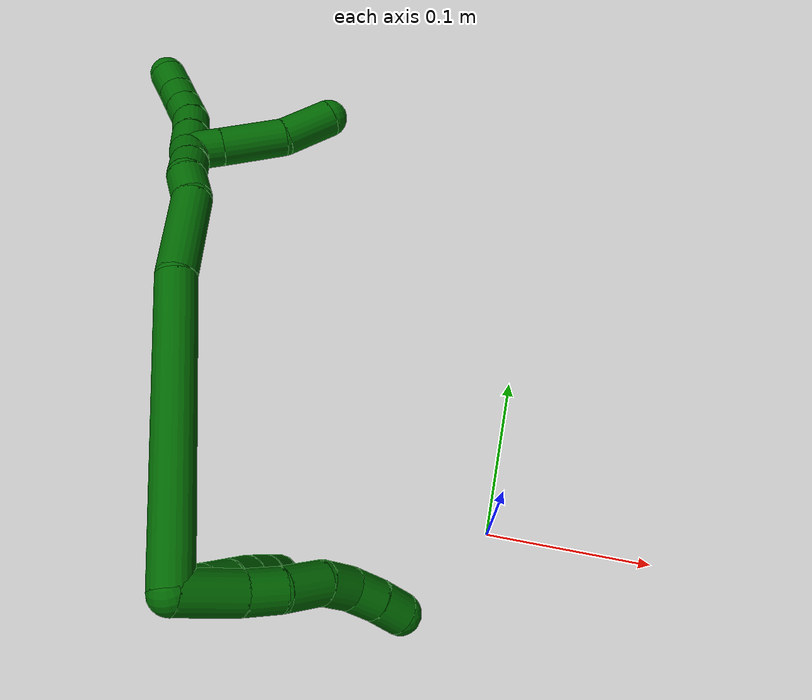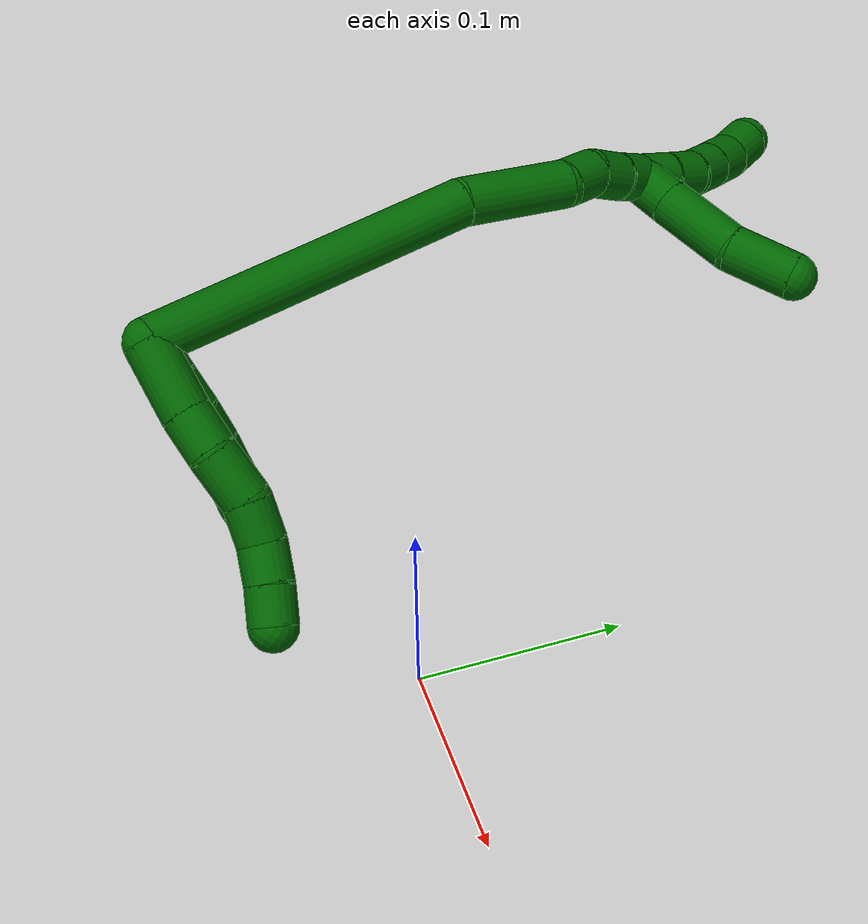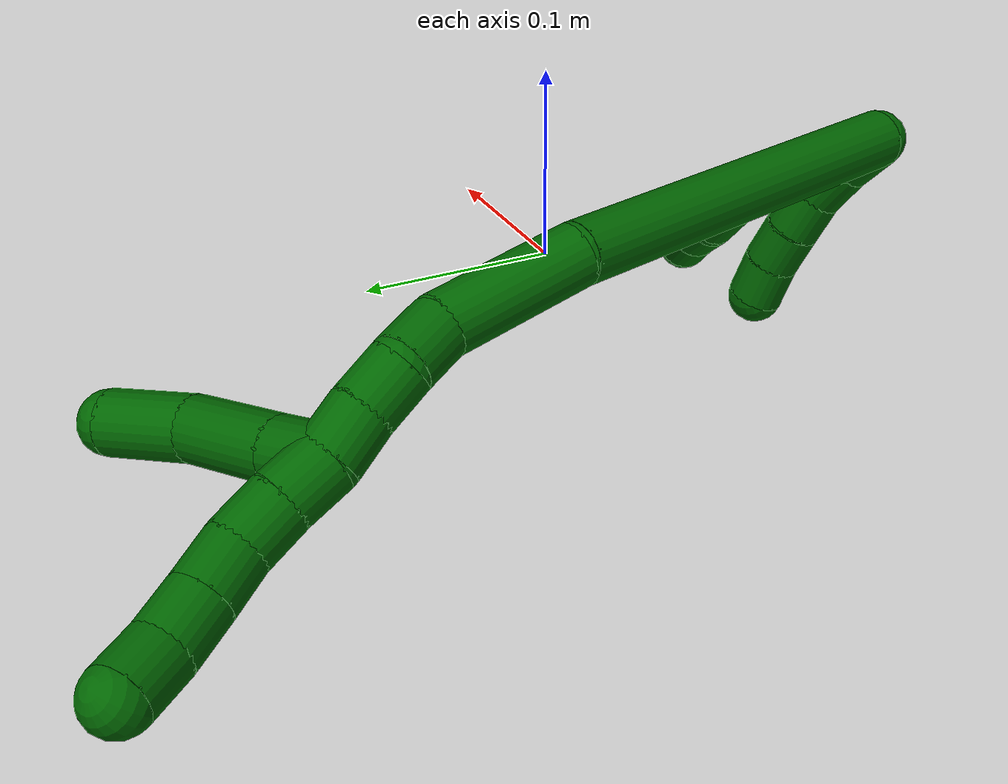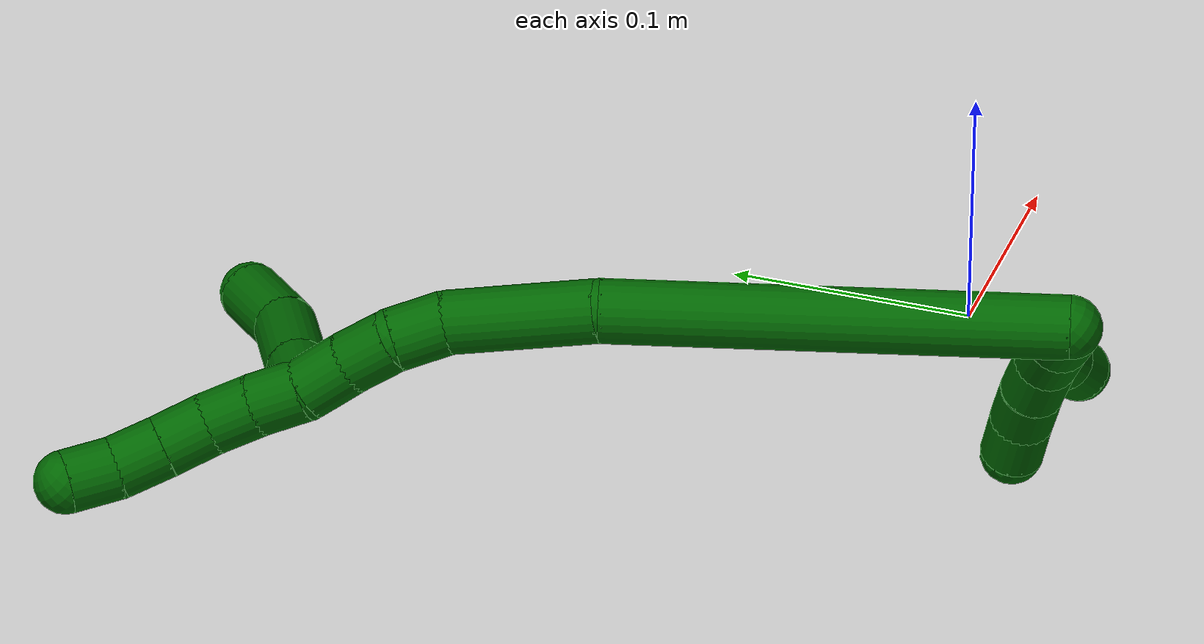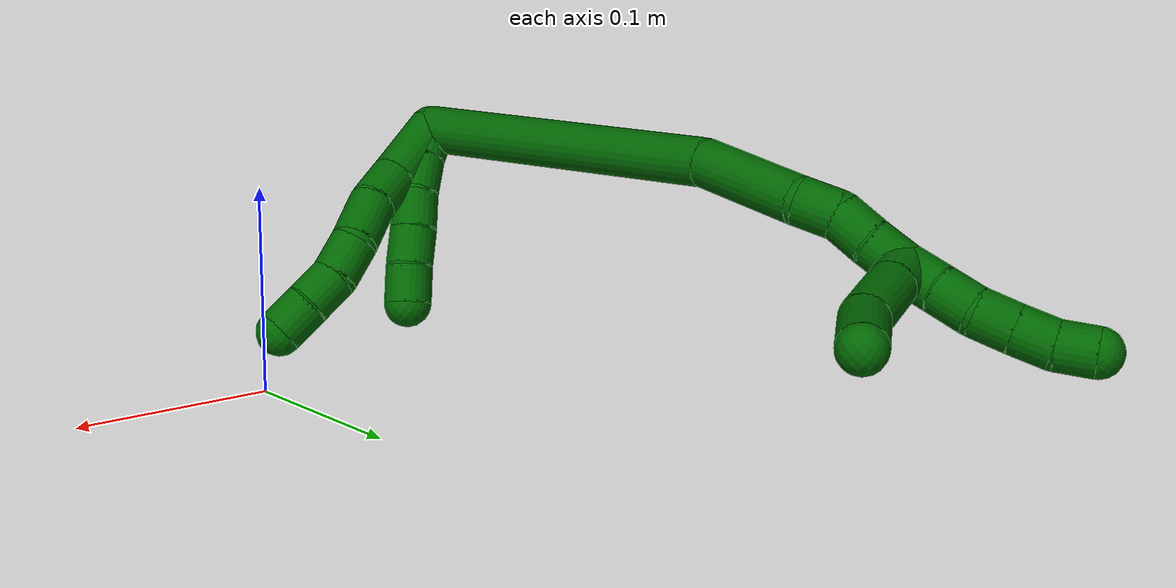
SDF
<sdf version="1.7">
 <world name="default">
  <model name="6">
   <static>0</static>
   <link name="6">
    <collision name="collision-cylinder-e_1_2_8">
     <pose>-0.001106 0.017279 -0.008733 -2.03876 -0.057065 0.092739</pose>
     <geometry><cylinder><radius>0.0125</radius><length>0.038784</length></cylinder></geometry>
     <surface>
      <friction><ode><mu>1.16</mu><mu2>1.16</mu2><slip1>0</slip1><slip2>0</slip2></ode></friction>
      <contact><ode><kp>1e+06</kp><kd>1</kd><max_vel>0</max_vel><min_depth>0.001</min_depth></ode></contact>
     </surface>
    </collision>
    <visual name="visual-cylinder-e_1_2_8">
     <pose>-0.001106 0.017279 -0.008733 -2.03876 -0.057065 0.092739</pose>
     <geometry><cylinder><radius>0.0125</radius><length>0.038784</length></cylinder></geometry>
     <material><ambient>0 0.392157 0.003922 1</ambient></material>
    </visual>
    <collision name="collision-cylinder-e_2_8_9">
     <pose>-0.002699 0.044999 -0.021446 -1.93497 -0.043596 0.063263</pose>
     <geometry><cylinder><radius>0.0125</radius><length>0.022369</length></cylinder></geometry>
     <surface>
      <friction><ode><mu>1.16</mu><mu2>1.16</mu2><slip1>0</slip1><slip2>0</slip2></ode></friction>
      <contact><ode><kp>1e+06</kp><kd>1</kd><max_vel>0</max_vel><min_depth>0.001</min_depth></ode></contact>
     </surface>
    </collision>
    <visual name="visual-cylinder-e_2_8_9">
     <pose>-0.002699 0.044999 -0.021446 -1.93497 -0.043596 0.063263</pose>
     <geometry><cylinder><radius>0.0125</radius><length>0.022369</length></cylinder></geometry>
     <material><ambient>0 0.392157 0.003922 1</ambient></material>
    </visual>
    <collision name="collision-cylinder-e_3_9_10">
     <pose>-0.006443 0.06775 -0.030411 -1.95558 -0.240424 0.354717</pose>
     <geometry><cylinder><radius>0.0125</radius><length>0.02735</length></cylinder></geometry>
     <surface>
      <friction><ode><mu>1.16</mu><mu2>1.16</mu2><slip1>0</slip1><slip2>0</slip2></ode></friction>
      <contact><ode><kp>1e+06</kp><kd>1</kd><max_vel>0</max_vel><min_depth>0.001</min_depth></ode></contact>
     </surface>
    </collision>
    <visual name="visual-cylinder-e_3_9_10">
     <pose>-0.006443 0.06775 -0.030411 -1.95558 -0.240424 0.354717</pose>
     <geometry><cylinder><radius>0.0125</radius><length>0.02735</length></cylinder></geometry>
     <material><ambient>0 0.392157 0.003922 1</ambient></material>
    </visual>
    <collision name="collision-cylinder-e_4_10_11">
     <pose>-0.011861 0.088161 -0.042116 -2.26331 -0.202562 0.426144</pose>
     <geometry><cylinder><radius>0.0125</radius><length>0.02149</length></cylinder></geometry>
     <surface>
      <friction><ode><mu>1.16</mu><mu2>1.16</mu2><slip1>0</slip1><slip2>0</slip2></ode></friction>
      <contact><ode><kp>1e+06</kp><kd>1</kd><max_vel>0</max_vel><min_depth>0.001</min_depth></ode></contact>
     </surface>
    </collision>
    <visual name="visual-cylinder-e_4_10_11">
     <pose>-0.011861 0.088161 -0.042116 -2.26331 -0.202562 0.426144</pose>
     <geometry><cylinder><radius>0.0125</radius><length>0.02149</length></cylinder></geometry>
     <material><ambient>0 0.392157 0.003922 1</ambient></material>
    </visual>
    <collision name="collision-cylinder-e_5_11_12">
     <pose>-0.013517 0.103508 -0.055712 -2.32992 0.050568 -0.117575</pose>
     <geometry><cylinder><radius>0.0125</radius><length>0.020004</length></cylinder></geometry>
     <surface>
      <friction><ode><mu>1.16</mu><mu2>1.16</mu2><slip1>0</slip1><slip2>0</slip2></ode></friction>
      <contact><ode><kp>1e+06</kp><kd>1</kd><max_vel>0</max_vel><min_depth>0.001</min_depth></ode></contact>
     </surface>
    </collision>
    <visual name="visual-cylinder-e_5_11_12">
     <pose>-0.013517 0.103508 -0.055712 -2.32992 0.050568 -0.117575</pose>
     <geometry><cylinder><radius>0.0125</radius><length>0.020004</length></cylinder></geometry>
     <material><ambient>0 0.392157 0.003922 1</ambient></material>
    </visual>
    <collision name="collision-cylinder-e_6_12_6">
     <pose>-0.012575 0.117314 -0.070125 -2.42554 0.043632 -0.116503</pose>
     <geometry><cylinder><radius>0.0125</radius><length>0.020004</length></cylinder></geometry>
     <surface>
      <friction><ode><mu>1.16</mu><mu2>1.16</mu2><slip1>0</slip1><slip2>0</slip2></ode></friction>
      <contact><ode><kp>1e+06</kp><kd>1</kd><max_vel>0</max_vel><min_depth>0.001</min_depth></ode></contact>
     </surface>
    </collision>
    <visual name="visual-cylinder-e_6_12_6">
     <pose>-0.012575 0.117314 -0.070125 -2.42554 0.043632 -0.116503</pose>
     <geometry><cylinder><radius>0.0125</radius><length>0.020004</length></cylinder></geometry>
     <material><ambient>0 0.392157 0.003922 1</ambient></material>
    </visual>
    <collision name="collision-cylinder-e_1_2_13">
     <pose>-0.003506 0.008255 -0.004423 -2.06262 -0.358176 0.587224</pose>
     <geometry><cylinder><radius>0.0125</radius><length>0.02</length></cylinder></geometry>
     <surface>
      <friction><ode><mu>1.16</mu><mu2>1.16</mu2><slip1>0</slip1><slip2>0</slip2></ode></friction>
      <contact><ode><kp>1e+06</kp><kd>1</kd><max_vel>0</max_vel><min_depth>0.001</min_depth></ode></contact>
     </surface>
    </collision>
    <visual name="visual-cylinder-e_1_2_13">
     <pose>-0.003506 0.008255 -0.004423 -2.06262 -0.358176 0.587224</pose>
     <geometry><cylinder><radius>0.0125</radius><length>0.02</length></cylinder></geometry>
     <material><ambient>0 0.392157 0.003922 1</ambient></material>
    </visual>
    <collision name="collision-cylinder-e_2_13_14">
     <pose>-0.011737 0.024107 -0.013312 -2.10235 -0.492243 0.827572</pose>
     <geometry><cylinder><radius>0.0125</radius><length>0.02</length></cylinder></geometry>
     <surface>
      <friction><ode><mu>1.16</mu><mu2>1.16</mu2><slip1>0</slip1><slip2>0</slip2></ode></friction>
      <contact><ode><kp>1e+06</kp><kd>1</kd><max_vel>0</max_vel><min_depth>0.001</min_depth></ode></contact>
     </surface>
    </collision>
    <visual name="visual-cylinder-e_2_13_14">
     <pose>-0.011737 0.024107 -0.013312 -2.10235 -0.492243 0.827572</pose>
     <geometry><cylinder><radius>0.0125</radius><length>0.02</length></cylinder></geometry>
     <material><ambient>0 0.392157 0.003922 1</ambient></material>
    </visual>
    <collision name="collision-cylinder-e_3_14_15">
     <pose>-0.022525 0.037953 -0.0227 -2.23791 -0.651191 1.21557</pose>
     <geometry><cylinder><radius>0.0125</radius><length>0.02</length></cylinder></geometry>
     <surface>
      <friction><ode><mu>1.16</mu><mu2>1.16</mu2><slip1>0</slip1><slip2>0</slip2></ode></friction>
      <contact><ode><kp>1e+06</kp><kd>1</kd><max_vel>0</max_vel><min_depth>0.001</min_depth></ode></contact>
     </surface>
    </collision>
    <visual name="visual-cylinder-e_3_14_15">
     <pose>-0.022525 0.037953 -0.0227 -2.23791 -0.651191 1.21557</pose>
     <geometry><cylinder><radius>0.0125</radius><length>0.02</length></cylinder></geometry>
     <material><ambient>0 0.392157 0.003922 1</ambient></material>
    </visual>
    <collision name="collision-cylinder-e_4_15_16">
     <pose>-0.034223 0.050402 -0.033077 -2.2924 -0.598868 1.19825</pose>
     <geometry><cylinder><radius>0.0125</radius><length>0.02</length></cylinder></geometry>
     <surface>
      <friction><ode><mu>1.16</mu><mu2>1.16</mu2><slip1>0</slip1><slip2>0</slip2></ode></friction>
      <contact><ode><kp>1e+06</kp><kd>1</kd><max_vel>0</max_vel><min_depth>0.001</min_depth></ode></contact>
     </surface>
    </collision>
    <visual name="visual-cylinder-e_4_15_16">
     <pose>-0.034223 0.050402 -0.033077 -2.2924 -0.598868 1.19825</pose>
     <geometry><cylinder><radius>0.0125</radius><length>0.02</length></cylinder></geometry>
     <material><ambient>0 0.392157 0.003922 1</ambient></material>
    </visual>
    <collision name="collision-cylinder-e_5_16_5">
     <pose>-0.046162 0.061864 -0.044244 -2.39713 -0.681741 1.47501</pose>
     <geometry><cylinder><radius>0.0125</radius><length>0.02</length></cylinder></geometry>
     <surface>
      <friction><ode><mu>1.16</mu><mu2>1.16</mu2><slip1>0</slip1><slip2>0</slip2></ode></friction>
      <contact><ode><kp>1e+06</kp><kd>1</kd><max_vel>0</max_vel><min_depth>0.001</min_depth></ode></contact>
     </surface>
    </collision>
    <visual name="visual-cylinder-e_5_16_5">
     <pose>-0.046162 0.061864 -0.044244 -2.39713 -0.681741 1.47501</pose>
     <geometry><cylinder><radius>0.0125</radius><length>0.02</length></cylinder></geometry>
     <material><ambient>0 0.392157 0.003922 1</ambient></material>
    </visual>
    <collision name="collision-cylinder-e_1_2_17">
     <pose>-0.055653 0.029566 0.062807 -0.439976 -0.675784 0.156814</pose>
     <geometry><cylinder><radius>0.0125</radius><length>0.177946</length></cylinder></geometry>
     <surface>
      <friction><ode><mu>1.16</mu><mu2>1.16</mu2><slip1>0</slip1><slip2>0</slip2></ode></friction>
      <contact><ode><kp>1e+06</kp><kd>1</kd><max_vel>0</max_vel><min_depth>0.001</min_depth></ode></contact>
     </surface>
    </collision>
    <visual name="visual-cylinder-e_1_2_17">
     <pose>-0.055653 0.029566 0.062807 -0.439976 -0.675784 0.156814</pose>
     <geometry><cylinder><radius>0.0125</radius><length>0.177946</length></cylinder></geometry>
     <material><ambient>0 0.392157 0.003922 1</ambient></material>
    </visual>
    <collision name="collision-cylinder-e_2_17_18">
     <pose>-0.132238 0.073123 0.141906 -0.709528 -0.772594 0.299088</pose>
     <geometry><cylinder><radius>0.0125</radius><length>0.059976</length></cylinder></geometry>
     <surface>
      <friction><ode><mu>1.16</mu><mu2>1.16</mu2><slip1>0</slip1><slip2>0</slip2></ode></friction>
      <contact><ode><kp>1e+06</kp><kd>1</kd><max_vel>0</max_vel><min_depth>0.001</min_depth></ode></contact>
     </surface>
    </collision>
    <visual name="visual-cylinder-e_2_17_18">
     <pose>-0.132238 0.073123 0.141906 -0.709528 -0.772594 0.299088</pose>
     <geometry><cylinder><radius>0.0125</radius><length>0.059976</length></cylinder></geometry>
     <material><ambient>0 0.392157 0.003922 1</ambient></material>
    </visual>
    <collision name="collision-cylinder-e_3_18_19">
     <pose>-0.162419 0.088991 0.163495 -0.340728 -1.02478 0.192936</pose>
     <geometry><cylinder><radius>0.0125</radius><length>0.021646</length></cylinder></geometry>
     <surface>
      <friction><ode><mu>1.16</mu><mu2>1.16</mu2><slip1>0</slip1><slip2>0</slip2></ode></friction>
      <contact><ode><kp>1e+06</kp><kd>1</kd><max_vel>0</max_vel><min_depth>0.001</min_depth></ode></contact>
     </surface>
    </collision>
    <visual name="visual-cylinder-e_3_18_19">
     <pose>-0.162419 0.088991 0.163495 -0.340728 -1.02478 0.192936</pose>
     <geometry><cylinder><radius>0.0125</radius><length>0.021646</length></cylinder></geometry>
     <material><ambient>0 0.392157 0.003922 1</ambient></material>
    </visual>
    <collision name="collision-cylinder-e_4_19_20">
     <pose>-0.180722 0.094803 0.171048 -1.05008 -1.10645 0.687086</pose>
     <geometry><cylinder><radius>0.0125</radius><length>0.020251</length></cylinder></geometry>
     <surface>
      <friction><ode><mu>1.16</mu><mu2>1.16</mu2><slip1>0</slip1><slip2>0</slip2></ode></friction>
      <contact><ode><kp>1e+06</kp><kd>1</kd><max_vel>0</max_vel><min_depth>0.001</min_depth></ode></contact>
     </surface>
    </collision>
    <visual name="visual-cylinder-e_4_19_20">
     <pose>-0.180722 0.094803 0.171048 -1.05008 -1.10645 0.687086</pose>
     <geometry><cylinder><radius>0.0125</radius><length>0.020251</length></cylinder></geometry>
     <material><ambient>0 0.392157 0.003922 1</ambient></material>
    </visual>
    <collision name="collision-cylinder-e_5_20_1">
     <pose>-0.199231 0.101462 0.175534 -0.885201 -1.21428 0.636137</pose>
     <geometry><cylinder><radius>0.0125</radius><length>0.020181</length></cylinder></geometry>
     <surface>
      <friction><ode><mu>1.16</mu><mu2>1.16</mu2><slip1>0</slip1><slip2>0</slip2></ode></friction>
      <contact><ode><kp>1e+06</kp><kd>1</kd><max_vel>0</max_vel><min_depth>0.001</min_depth></ode></contact>
     </surface>
    </collision>
    <visual name="visual-cylinder-e_5_20_1">
     <pose>-0.199231 0.101462 0.175534 -0.885201 -1.21428 0.636137</pose>
     <geometry><cylinder><radius>0.0125</radius><length>0.020181</length></cylinder></geometry>
     <material><ambient>0 0.392157 0.003922 1</ambient></material>
    </visual>
    <collision name="collision-cylinder-e_1_1_21">
     <pose>-0.207342 0.115014 0.17712 -1.63017 0.123402 -0.130934</pose>
     <geometry><cylinder><radius>0.0125</radius><length>0.021856</length></cylinder></geometry>
     <surface>
      <friction><ode><mu>1.16</mu><mu2>1.16</mu2><slip1>0</slip1><slip2>0</slip2></ode></friction>
      <contact><ode><kp>1e+06</kp><kd>1</kd><max_vel>0</max_vel><min_depth>0.001</min_depth></ode></contact>
     </surface>
    </collision>
    <visual name="visual-cylinder-e_1_1_21">
     <pose>-0.207342 0.115014 0.17712 -1.63017 0.123402 -0.130934</pose>
     <geometry><cylinder><radius>0.0125</radius><length>0.021856</length></cylinder></geometry>
     <material><ambient>0 0.392157 0.003922 1</ambient></material>
    </visual>
    <collision name="collision-cylinder-e_2_21_22">
     <pose>-0.203041 0.146844 0.175786 -1.60366 0.13975 -0.144404</pose>
     <geometry><cylinder><radius>0.0125</radius><length>0.042446</length></cylinder></geometry>
     <surface>
      <friction><ode><mu>1.16</mu><mu2>1.16</mu2><slip1>0</slip1><slip2>0</slip2></ode></friction>
      <contact><ode><kp>1e+06</kp><kd>1</kd><max_vel>0</max_vel><min_depth>0.001</min_depth></ode></contact>
     </surface>
    </collision>
    <visual name="visual-cylinder-e_2_21_22">
     <pose>-0.203041 0.146844 0.175786 -1.60366 0.13975 -0.144404</pose>
     <geometry><cylinder><radius>0.0125</radius><length>0.042446</length></cylinder></geometry>
     <material><ambient>0 0.392157 0.003922 1</ambient></material>
    </visual>
    <collision name="collision-cylinder-e_3_22_4">
     <pose>-0.20079 0.185428 0.178109 -1.40101 -0.039533 0.033334</pose>
     <geometry><cylinder><radius>0.0125</radius><length>0.035698</length></cylinder></geometry>
     <surface>
      <friction><ode><mu>1.16</mu><mu2>1.16</mu2><slip1>0</slip1><slip2>0</slip2></ode></friction>
      <contact><ode><kp>1e+06</kp><kd>1</kd><max_vel>0</max_vel><min_depth>0.001</min_depth></ode></contact>
     </surface>
    </collision>
    <visual name="visual-cylinder-e_3_22_4">
     <pose>-0.20079 0.185428 0.178109 -1.40101 -0.039533 0.033334</pose>
     <geometry><cylinder><radius>0.0125</radius><length>0.035698</length></cylinder></geometry>
     <material><ambient>0 0.392157 0.003922 1</ambient></material>
    </visual>
    <collision name="collision-cylinder-e_1_1_23">
     <pose>-0.217067 0.108108 0.181561 -0.801296 -0.993528 0.451403</pose>
     <geometry><cylinder><radius>0.0125</radius><length>0.02</length></cylinder></geometry>
     <surface>
      <friction><ode><mu>1.16</mu><mu2>1.16</mu2><slip1>0</slip1><slip2>0</slip2></ode></friction>
      <contact><ode><kp>1e+06</kp><kd>1</kd><max_vel>0</max_vel><min_depth>0.001</min_depth></ode></contact>
     </surface>
    </collision>
    <visual name="visual-cylinder-e_1_1_23">
     <pose>-0.217067 0.108108 0.181561 -0.801296 -0.993528 0.451403</pose>
     <geometry><cylinder><radius>0.0125</radius><length>0.02</length></cylinder></geometry>
     <material><ambient>0 0.392157 0.003922 1</ambient></material>
    </visual>
    <collision name="collision-cylinder-e_2_23_24">
     <pose>-0.234235 0.115267 0.18886 -0.746294 -1.07348 0.457715</pose>
     <geometry><cylinder><radius>0.0125</radius><length>0.02</length></cylinder></geometry>
     <surface>
      <friction><ode><mu>1.16</mu><mu2>1.16</mu2><slip1>0</slip1><slip2>0</slip2></ode></friction>
      <contact><ode><kp>1e+06</kp><kd>1</kd><max_vel>0</max_vel><min_depth>0.001</min_depth></ode></contact>
     </surface>
    </collision>
    <visual name="visual-cylinder-e_2_23_24">
     <pose>-0.234235 0.115267 0.18886 -0.746294 -1.07348 0.457715</pose>
     <geometry><cylinder><radius>0.0125</radius><length>0.02</length></cylinder></geometry>
     <material><ambient>0 0.392157 0.003922 1</ambient></material>
    </visual>
    <collision name="collision-cylinder-e_3_24_25">
     <pose>-0.25217 0.119302 0.196328 -0.198257 -1.15449 0.129357</pose>
     <geometry><cylinder><radius>0.0125</radius><length>0.02</length></cylinder></geometry>
     <surface>
      <friction><ode><mu>1.16</mu><mu2>1.16</mu2><slip1>0</slip1><slip2>0</slip2></ode></friction>
      <contact><ode><kp>1e+06</kp><kd>1</kd><max_vel>0</max_vel><min_depth>0.001</min_depth></ode></contact>
     </surface>
    </collision>
    <visual name="visual-cylinder-e_3_24_25">
     <pose>-0.25217 0.119302 0.196328 -0.198257 -1.15449 0.129357</pose>
     <geometry><cylinder><radius>0.0125</radius><length>0.02</length></cylinder></geometry>
     <material><ambient>0 0.392157 0.003922 1</ambient></material>
    </visual>
    <collision name="collision-cylinder-e_4_25_26">
     <pose>-0.270318 0.120881 0.204576 -0.180599 -1.12029 0.11345</pose>
     <geometry><cylinder><radius>0.0125</radius><length>0.02</length></cylinder></geometry>
     <surface>
      <friction><ode><mu>1.16</mu><mu2>1.16</mu2><slip1>0</slip1><slip2>0</slip2></ode></friction>
      <contact><ode><kp>1e+06</kp><kd>1</kd><max_vel>0</max_vel><min_depth>0.001</min_depth></ode></contact>
     </surface>
    </collision>
    <visual name="visual-cylinder-e_4_25_26">
     <pose>-0.270318 0.120881 0.204576 -0.180599 -1.12029 0.11345</pose>
     <geometry><cylinder><radius>0.0125</radius><length>0.02</length></cylinder></geometry>
     <material><ambient>0 0.392157 0.003922 1</ambient></material>
    </visual>
    <collision name="collision-cylinder-e_5_26_3">
     <pose>-0.287335 0.121619 0.214838 0.007283 -0.92987 -0.003653</pose>
     <geometry><cylinder><radius>0.0125</radius><length>0.02</length></cylinder></geometry>
     <surface>
      <friction><ode><mu>1.16</mu><mu2>1.16</mu2><slip1>0</slip1><slip2>0</slip2></ode></friction>
      <contact><ode><kp>1e+06</kp><kd>1</kd><max_vel>0</max_vel><min_depth>0.001</min_depth></ode></contact>
     </surface>
    </collision>
    <visual name="visual-cylinder-e_5_26_3">
     <pose>-0.287335 0.121619 0.214838 0.007283 -0.92987 -0.003653</pose>
     <geometry><cylinder><radius>0.0125</radius><length>0.02</length></cylinder></geometry>
     <material><ambient>0 0.392157 0.003922 1</ambient></material>
    </visual>
    <collision name="collision-sphere-3">
     <pose>-0.295351 0.121576 0.220818 0 -0 0</pose>
     <geometry><sphere><radius>0.0125</radius></sphere></geometry>
     <surface>
      <friction><ode><mu>1.16</mu><mu2>1.16</mu2><slip1>0</slip1><slip2>0</slip2></ode></friction>
      <contact><ode><kp>1e+06</kp><kd>1</kd><max_vel>0</max_vel><min_depth>0.001</min_depth></ode></contact>
     </surface>
    </collision>
    <visual name="visual-sphere-3">
     <pose>-0.295351 0.121576 0.220818 0 -0 0</pose>
     <geometry><sphere><radius>0.0125</radius></sphere></geometry>
     <material><ambient>0 0.392157 0.003922 1</ambient></material>
    </visual>
    <collision name="collision-sphere-26">
     <pose>-0.27932 0.121663 0.208859 0 -0 0</pose>
     <geometry><sphere><radius>0.0125</radius></sphere></geometry>
     <surface>
      <friction><ode><mu>1.16</mu><mu2>1.16</mu2><slip1>0</slip1><slip2>0</slip2></ode></friction>
      <contact><ode><kp>1e+06</kp><kd>1</kd><max_vel>0</max_vel><min_depth>0.001</min_depth></ode></contact>
     </surface>
    </collision>
    <visual name="visual-sphere-26">
     <pose>-0.27932 0.121663 0.208859 0 -0 0</pose>
     <geometry><sphere><radius>0.0125</radius></sphere></geometry>
     <material><ambient>0 0.392157 0.003922 1</ambient></material>
    </visual>
    <collision name="collision-sphere-25">
     <pose>-0.261316 0.120099 0.200292 0 -0 0</pose>
     <geometry><sphere><radius>0.0125</radius></sphere></geometry>
     <surface>
      <friction><ode><mu>1.16</mu><mu2>1.16</mu2><slip1>0</slip1><slip2>0</slip2></ode></friction>
      <contact><ode><kp>1e+06</kp><kd>1</kd><max_vel>0</max_vel><min_depth>0.001</min_depth></ode></contact>
     </surface>
    </collision>
    <visual name="visual-sphere-25">
     <pose>-0.261316 0.120099 0.200292 0 -0 0</pose>
     <geometry><sphere><radius>0.0125</radius></sphere></geometry>
     <material><ambient>0 0.392157 0.003922 1</ambient></material>
    </visual>
    <collision name="collision-sphere-24">
     <pose>-0.243024 0.118506 0.192363 0 -0 0</pose>
     <geometry><sphere><radius>0.0125</radius></sphere></geometry>
     <surface>
      <friction><ode><mu>1.16</mu><mu2>1.16</mu2><slip1>0</slip1><slip2>0</slip2></ode></friction>
      <contact><ode><kp>1e+06</kp><kd>1</kd><max_vel>0</max_vel><min_depth>0.001</min_depth></ode></contact>
     </surface>
    </collision>
    <visual name="visual-sphere-24">
     <pose>-0.243024 0.118506 0.192363 0 -0 0</pose>
     <geometry><sphere><radius>0.0125</radius></sphere></geometry>
     <material><ambient>0 0.392157 0.003922 1</ambient></material>
    </visual>
    <collision name="collision-sphere-23">
     <pose>-0.225446 0.112028 0.185358 0 -0 0</pose>
     <geometry><sphere><radius>0.0125</radius></sphere></geometry>
     <surface>
      <friction><ode><mu>1.16</mu><mu2>1.16</mu2><slip1>0</slip1><slip2>0</slip2></ode></friction>
      <contact><ode><kp>1e+06</kp><kd>1</kd><max_vel>0</max_vel><min_depth>0.001</min_depth></ode></contact>
     </surface>
    </collision>
    <visual name="visual-sphere-23">
     <pose>-0.225446 0.112028 0.185358 0 -0 0</pose>
     <geometry><sphere><radius>0.0125</radius></sphere></geometry>
     <material><ambient>0 0.392157 0.003922 1</ambient></material>
    </visual>
    <collision name="collision-sphere-4">
     <pose>-0.201495 0.203007 0.181123 0 -0 0</pose>
     <geometry><sphere><radius>0.0125</radius></sphere></geometry>
     <surface>
      <friction><ode><mu>1.16</mu><mu2>1.16</mu2><slip1>0</slip1><slip2>0</slip2></ode></friction>
      <contact><ode><kp>1e+06</kp><kd>1</kd><max_vel>0</max_vel><min_depth>0.001</min_depth></ode></contact>
     </surface>
    </collision>
    <visual name="visual-sphere-4">
     <pose>-0.201495 0.203007 0.181123 0 -0 0</pose>
     <geometry><sphere><radius>0.0125</radius></sphere></geometry>
     <material><ambient>0 0.392157 0.003922 1</ambient></material>
    </visual>
    <collision name="collision-sphere-22">
     <pose>-0.200085 0.167849 0.175096 0 -0 0</pose>
     <geometry><sphere><radius>0.0125</radius></sphere></geometry>
     <surface>
      <friction><ode><mu>1.16</mu><mu2>1.16</mu2><slip1>0</slip1><slip2>0</slip2></ode></friction>
      <contact><ode><kp>1e+06</kp><kd>1</kd><max_vel>0</max_vel><min_depth>0.001</min_depth></ode></contact>
     </surface>
    </collision>
    <visual name="visual-sphere-22">
     <pose>-0.200085 0.167849 0.175096 0 -0 0</pose>
     <geometry><sphere><radius>0.0125</radius></sphere></geometry>
     <material><ambient>0 0.392157 0.003922 1</ambient></material>
    </visual>
    <collision name="collision-sphere-21">
     <pose>-0.205997 0.125839 0.176477 0 -0 0</pose>
     <geometry><sphere><radius>0.0125</radius></sphere></geometry>
     <surface>
      <friction><ode><mu>1.16</mu><mu2>1.16</mu2><slip1>0</slip1><slip2>0</slip2></ode></friction>
      <contact><ode><kp>1e+06</kp><kd>1</kd><max_vel>0</max_vel><min_depth>0.001</min_depth></ode></contact>
     </surface>
    </collision>
    <visual name="visual-sphere-21">
     <pose>-0.205997 0.125839 0.176477 0 -0 0</pose>
     <geometry><sphere><radius>0.0125</radius></sphere></geometry>
     <material><ambient>0 0.392157 0.003922 1</ambient></material>
    </visual>
    <collision name="collision-sphere-1">
     <pose>-0.208687 0.104188 0.177764 0 -0 0</pose>
     <geometry><sphere><radius>0.0125</radius></sphere></geometry>
     <surface>
      <friction><ode><mu>1.16</mu><mu2>1.16</mu2><slip1>0</slip1><slip2>0</slip2></ode></friction>
      <contact><ode><kp>1e+06</kp><kd>1</kd><max_vel>0</max_vel><min_depth>0.001</min_depth></ode></contact>
     </surface>
    </collision>
    <visual name="visual-sphere-1">
     <pose>-0.208687 0.104188 0.177764 0 -0 0</pose>
     <geometry><sphere><radius>0.0125</radius></sphere></geometry>
     <material><ambient>0 0.392157 0.003922 1</ambient></material>
    </visual>
    <collision name="collision-sphere-12">
     <pose>-0.013012 0.110755 -0.062587 0 -0 0</pose>
     <geometry><sphere><radius>0.0125</radius></sphere></geometry>
     <surface>
      <friction><ode><mu>1.16</mu><mu2>1.16</mu2><slip1>0</slip1><slip2>0</slip2></ode></friction>
      <contact><ode><kp>1e+06</kp><kd>1</kd><max_vel>0</max_vel><min_depth>0.001</min_depth></ode></contact>
     </surface>
    </collision>
    <visual name="visual-sphere-12">
     <pose>-0.013012 0.110755 -0.062587 0 -0 0</pose>
     <geometry><sphere><radius>0.0125</radius></sphere></geometry>
     <material><ambient>0 0.392157 0.003922 1</ambient></material>
    </visual>
    <collision name="collision-sphere-11">
     <pose>-0.014023 0.096262 -0.048836 0 -0 0</pose>
     <geometry><sphere><radius>0.0125</radius></sphere></geometry>
     <surface>
      <friction><ode><mu>1.16</mu><mu2>1.16</mu2><slip1>0</slip1><slip2>0</slip2></ode></friction>
      <contact><ode><kp>1e+06</kp><kd>1</kd><max_vel>0</max_vel><min_depth>0.001</min_depth></ode></contact>
     </surface>
    </collision>
    <visual name="visual-sphere-11">
     <pose>-0.014023 0.096262 -0.048836 0 -0 0</pose>
     <geometry><sphere><radius>0.0125</radius></sphere></geometry>
     <material><ambient>0 0.392157 0.003922 1</ambient></material>
    </visual>
    <collision name="collision-sphere-10">
     <pose>-0.009699 0.080061 -0.035396 0 -0 0</pose>
     <geometry><sphere><radius>0.0125</radius></sphere></geometry>
     <surface>
      <friction><ode><mu>1.16</mu><mu2>1.16</mu2><slip1>0</slip1><slip2>0</slip2></ode></friction>
      <contact><ode><kp>1e+06</kp><kd>1</kd><max_vel>0</max_vel><min_depth>0.001</min_depth></ode></contact>
     </surface>
    </collision>
    <visual name="visual-sphere-10">
     <pose>-0.009699 0.080061 -0.035396 0 -0 0</pose>
     <geometry><sphere><radius>0.0125</radius></sphere></geometry>
     <material><ambient>0 0.392157 0.003922 1</ambient></material>
    </visual>
    <collision name="collision-sphere-9">
     <pose>-0.003187 0.055439 -0.025425 0 -0 0</pose>
     <geometry><sphere><radius>0.0125</radius></sphere></geometry>
     <surface>
      <friction><ode><mu>1.16</mu><mu2>1.16</mu2><slip1>0</slip1><slip2>0</slip2></ode></friction>
      <contact><ode><kp>1e+06</kp><kd>1</kd><max_vel>0</max_vel><min_depth>0.001</min_depth></ode></contact>
     </surface>
    </collision>
    <visual name="visual-sphere-9">
     <pose>-0.003187 0.055439 -0.025425 0 -0 0</pose>
     <geometry><sphere><radius>0.0125</radius></sphere></geometry>
     <material><ambient>0 0.392157 0.003922 1</ambient></material>
    </visual>
    <collision name="collision-sphere-2">
     <geometry><sphere><radius>0.0125</radius></sphere></geometry>
     <surface>
      <friction><ode><mu>1.16</mu><mu2>1.16</mu2><slip1>0</slip1><slip2>0</slip2></ode></friction>
      <contact><ode><kp>1e+06</kp><kd>1</kd><max_vel>0</max_vel><min_depth>0.001</min_depth></ode></contact>
     </surface>
    </collision>
    <visual name="visual-sphere-2">
     <geometry><sphere><radius>0.0125</radius></sphere></geometry>
     <material><ambient>0 0.392157 0.003922 1</ambient></material>
    </visual>
    <collision name="collision-sphere-19">
     <pose>-0.171669 0.090869 0.168792 0 -0 0</pose>
     <geometry><sphere><radius>0.0125</radius></sphere></geometry>
     <surface>
      <friction><ode><mu>1.16</mu><mu2>1.16</mu2><slip1>0</slip1><slip2>0</slip2></ode></friction>
      <contact><ode><kp>1e+06</kp><kd>1</kd><max_vel>0</max_vel><min_depth>0.001</min_depth></ode></contact>
     </surface>
    </collision>
    <visual name="visual-sphere-19">
     <pose>-0.171669 0.090869 0.168792 0 -0 0</pose>
     <geometry><sphere><radius>0.0125</radius></sphere></geometry>
     <material><ambient>0 0.392157 0.003922 1</ambient></material>
    </visual>
    <collision name="collision-sphere-8">
     <pose>-0.002212 0.034558 -0.017466 0 -0 0</pose>
     <geometry><sphere><radius>0.0125</radius></sphere></geometry>
     <surface>
      <friction><ode><mu>1.16</mu><mu2>1.16</mu2><slip1>0</slip1><slip2>0</slip2></ode></friction>
      <contact><ode><kp>1e+06</kp><kd>1</kd><max_vel>0</max_vel><min_depth>0.001</min_depth></ode></contact>
     </surface>
    </collision>
    <visual name="visual-sphere-8">
     <pose>-0.002212 0.034558 -0.017466 0 -0 0</pose>
     <geometry><sphere><radius>0.0125</radius></sphere></geometry>
     <material><ambient>0 0.392157 0.003922 1</ambient></material>
    </visual>
    <collision name="collision-sphere-6">
     <pose>-0.012139 0.123873 -0.077664 0 -0 0</pose>
     <geometry><sphere><radius>0.0125</radius></sphere></geometry>
     <surface>
      <friction><ode><mu>1.16</mu><mu2>1.16</mu2><slip1>0</slip1><slip2>0</slip2></ode></friction>
      <contact><ode><kp>1e+06</kp><kd>1</kd><max_vel>0</max_vel><min_depth>0.001</min_depth></ode></contact>
     </surface>
    </collision>
    <visual name="visual-sphere-6">
     <pose>-0.012139 0.123873 -0.077664 0 -0 0</pose>
     <geometry><sphere><radius>0.0125</radius></sphere></geometry>
     <material><ambient>0 0.392157 0.003922 1</ambient></material>
    </visual>
    <collision name="collision-sphere-13">
     <pose>-0.007011 0.016511 -0.008845 0 -0 0</pose>
     <geometry><sphere><radius>0.0125</radius></sphere></geometry>
     <surface>
      <friction><ode><mu>1.16</mu><mu2>1.16</mu2><slip1>0</slip1><slip2>0</slip2></ode></friction>
      <contact><ode><kp>1e+06</kp><kd>1</kd><max_vel>0</max_vel><min_depth>0.001</min_depth></ode></contact>
     </surface>
    </collision>
    <visual name="visual-sphere-13">
     <pose>-0.007011 0.016511 -0.008845 0 -0 0</pose>
     <geometry><sphere><radius>0.0125</radius></sphere></geometry>
     <material><ambient>0 0.392157 0.003922 1</ambient></material>
    </visual>
    <collision name="collision-sphere-14">
     <pose>-0.016463 0.031704 -0.017779 0 -0 0</pose>
     <geometry><sphere><radius>0.0125</radius></sphere></geometry>
     <surface>
      <friction><ode><mu>1.16</mu><mu2>1.16</mu2><slip1>0</slip1><slip2>0</slip2></ode></friction>
      <contact><ode><kp>1e+06</kp><kd>1</kd><max_vel>0</max_vel><min_depth>0.001</min_depth></ode></contact>
     </surface>
    </collision>
    <visual name="visual-sphere-14">
     <pose>-0.016463 0.031704 -0.017779 0 -0 0</pose>
     <geometry><sphere><radius>0.0125</radius></sphere></geometry>
     <material><ambient>0 0.392157 0.003922 1</ambient></material>
    </visual>
    <collision name="collision-sphere-15">
     <pose>-0.028586 0.044201 -0.027621 0 -0 0</pose>
     <geometry><sphere><radius>0.0125</radius></sphere></geometry>
     <surface>
      <friction><ode><mu>1.16</mu><mu2>1.16</mu2><slip1>0</slip1><slip2>0</slip2></ode></friction>
      <contact><ode><kp>1e+06</kp><kd>1</kd><max_vel>0</max_vel><min_depth>0.001</min_depth></ode></contact>
     </surface>
    </collision>
    <visual name="visual-sphere-15">
     <pose>-0.028586 0.044201 -0.027621 0 -0 0</pose>
     <geometry><sphere><radius>0.0125</radius></sphere></geometry>
     <material><ambient>0 0.392157 0.003922 1</ambient></material>
    </visual>
    <collision name="collision-sphere-16">
     <pose>-0.03986 0.056603 -0.038534 0 -0 0</pose>
     <geometry><sphere><radius>0.0125</radius></sphere></geometry>
     <surface>
      <friction><ode><mu>1.16</mu><mu2>1.16</mu2><slip1>0</slip1><slip2>0</slip2></ode></friction>
      <contact><ode><kp>1e+06</kp><kd>1</kd><max_vel>0</max_vel><min_depth>0.001</min_depth></ode></contact>
     </surface>
    </collision>
    <visual name="visual-sphere-16">
     <pose>-0.03986 0.056603 -0.038534 0 -0 0</pose>
     <geometry><sphere><radius>0.0125</radius></sphere></geometry>
     <material><ambient>0 0.392157 0.003922 1</ambient></material>
    </visual>
    <collision name="collision-sphere-5">
     <pose>-0.052463 0.067126 -0.049955 0 -0 0</pose>
     <geometry><sphere><radius>0.0125</radius></sphere></geometry>
     <surface>
      <friction><ode><mu>1.16</mu><mu2>1.16</mu2><slip1>0</slip1><slip2>0</slip2></ode></friction>
      <contact><ode><kp>1e+06</kp><kd>1</kd><max_vel>0</max_vel><min_depth>0.001</min_depth></ode></contact>
     </surface>
    </collision>
    <visual name="visual-sphere-5">
     <pose>-0.052463 0.067126 -0.049955 0 -0 0</pose>
     <geometry><sphere><radius>0.0125</radius></sphere></geometry>
     <material><ambient>0 0.392157 0.003922 1</ambient></material>
    </visual>
    <collision name="collision-sphere-17">
     <pose>-0.111307 0.059133 0.125614 0 -0 0</pose>
     <geometry><sphere><radius>0.0125</radius></sphere></geometry>
     <surface>
      <friction><ode><mu>1.16</mu><mu2>1.16</mu2><slip1>0</slip1><slip2>0</slip2></ode></friction>
      <contact><ode><kp>1e+06</kp><kd>1</kd><max_vel>0</max_vel><min_depth>0.001</min_depth></ode></contact>
     </surface>
    </collision>
    <visual name="visual-sphere-17">
     <pose>-0.111307 0.059133 0.125614 0 -0 0</pose>
     <geometry><sphere><radius>0.0125</radius></sphere></geometry>
     <material><ambient>0 0.392157 0.003922 1</ambient></material>
    </visual>
    <collision name="collision-sphere-18">
     <pose>-0.15317 0.087113 0.158198 0 -0 0</pose>
     <geometry><sphere><radius>0.0125</radius></sphere></geometry>
     <surface>
      <friction><ode><mu>1.16</mu><mu2>1.16</mu2><slip1>0</slip1><slip2>0</slip2></ode></friction>
      <contact><ode><kp>1e+06</kp><kd>1</kd><max_vel>0</max_vel><min_depth>0.001</min_depth></ode></contact>
     </surface>
    </collision>
    <visual name="visual-sphere-18">
     <pose>-0.15317 0.087113 0.158198 0 -0 0</pose>
     <geometry><sphere><radius>0.0125</radius></sphere></geometry>
     <material><ambient>0 0.392157 0.003922 1</ambient></material>
    </visual>
    <collision name="collision-sphere-20">
     <pose>-0.189775 0.098736 0.173304 0 -0 0</pose>
     <geometry><sphere><radius>0.0125</radius></sphere></geometry>
     <surface>
      <friction><ode><mu>1.16</mu><mu2>1.16</mu2><slip1>0</slip1><slip2>0</slip2></ode></friction>
      <contact><ode><kp>1e+06</kp><kd>1</kd><max_vel>0</max_vel><min_depth>0.001</min_depth></ode></contact>
     </surface>
    </collision>
    <visual name="visual-sphere-20">
     <pose>-0.189775 0.098736 0.173304 0 -0 0</pose>
     <geometry><sphere><radius>0.0125</radius></sphere></geometry>
     <material><ambient>0 0.392157 0.003922 1</ambient></material>
    </visual>
    <inertial>
     <pose>-0.103987 0.074805 0.080292 0 -0 0</pose>
     <mass>0.75</mass>
     <inertia>
      <ixx>0.000461</ixx>
      <ixy>0</ixy>
      <ixz>0</ixz>
      <iyy>0.000571</iyy>
      <iyz>0</iyz>
      <izz>0.000131</izz>
     </inertia>
    </inertial>
   </link>
   <pose>-0.155822 -0.082318 0.102375 -0.310142 -0.738924 -0.744167</pose>
  </model>
 </world>
</sdf>
